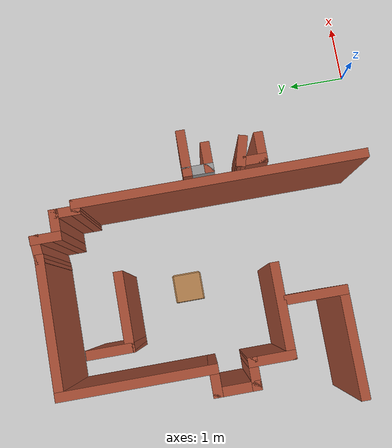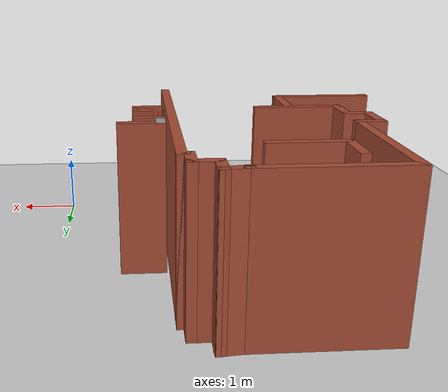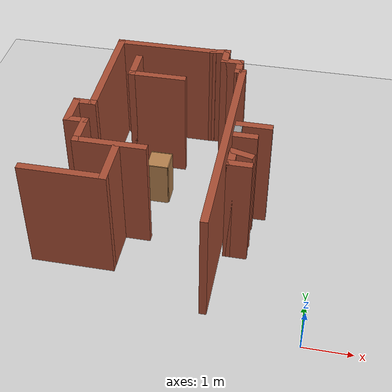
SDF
<sdf version="1.6">
 <world name="default">
  <model name="ground_plane">
   <static>1</static>
   <link name="link">
    <collision name="collision">
     <geometry><plane><normal>0 0 1</normal><size>100 100</size></plane></geometry>
     <surface><friction><ode><mu>100</mu><mu2>50</mu2></ode></friction></surface>
    </collision>
    <visual name="visual">
     <cast_shadows>0</cast_shadows>
     <geometry><plane><normal>0 0 1</normal><size>100 100</size></plane></geometry>
     <material>
      <script><uri>file://media/materials/scripts/gazebo.material</uri><name>Gazebo/Grey</name></script>
     </material>
    </visual>
   </link>
  </model>
  <model name="map_45">
   <link name="Wall_0">
    <pose>-3.30096 5.5702 0 0 -0 3.14159</pose>
    <visual name="Wall_0_Visual">
     <pose>0 0 1.25 0 -0 0</pose>
     <geometry><box><size>2.25 0.15 2.5</size></box></geometry>
     <material>
      <script><uri>file://media/materials/scripts/gazebo.material</uri><name>Gazebo/Bricks</name></script>
      <ambient>1 1 1 1</ambient>
      <shader type="pixel"/>
     </material>
     <meta><layer>0</layer></meta>
    </visual>
    <collision name="Wall_0_Collision">
     <pose>0 0 1.25 0 -0 0</pose>
     <geometry><box><size>2.25 0.15 2.5</size></box></geometry>
     <surface>
      <friction>
       <ode><mu>1</mu><mu2>1</mu2><fdir1>0 0 0</fdir1><slip1>0</slip1><slip2>0</slip2></ode>
       <torsional>
        <coefficient>1</coefficient>
        <patch_radius>0</patch_radius>
        <surface_radius>0</surface_radius>
        <use_patch_radius>1</use_patch_radius>
        <ode><slip>0</slip></ode>
       </torsional>
      </friction>
      <bounce><restitution_coefficient>0</restitution_coefficient><threshold>1e+06</threshold></bounce>
      <contact>
       <collide_without_contact>0</collide_without_contact>
       <collide_without_contact_bitmask>1</collide_without_contact_bitmask>
       <collide_bitmask>1</collide_bitmask>
       <ode>
        <soft_cfm>0</soft_cfm>
        <soft_erp>0.2</soft_erp>
        <kp>1e+13</kp>
        <kd>1</kd>
        <max_vel>0.01</max_vel>
        <min_depth>0</min_depth>
       </ode>
       <bullet>
        <split_impulse>1</split_impulse>
        <split_impulse_penetration_threshold>-0.01</split_impulse_penetration_threshold>
        <soft_cfm>0</soft_cfm>
        <soft_erp>0.2</soft_erp>
        <kp>1e+13</kp>
        <kd>1</kd>
       </bullet>
      </contact>
     </surface>
    </collision>
   </link>
   <link name="Wall_1">
    <pose>-4.35096 4.3952 0 0 0 -1.5708</pose>
    <visual name="Wall_1_Visual">
     <pose>0 0 1.25 0 -0 0</pose>
     <geometry><box><size>2.5 0.15 2.5</size></box></geometry>
     <material>
      <script><uri>file://media/materials/scripts/gazebo.material</uri><name>Gazebo/Bricks</name></script>
      <ambient>1 1 1 1</ambient>
      <shader type="pixel"/>
     </material>
     <meta><layer>0</layer></meta>
    </visual>
    <collision name="Wall_1_Collision">
     <pose>0 0 1.25 0 -0 0</pose>
     <geometry><box><size>2.5 0.15 2.5</size></box></geometry>
     <surface>
      <friction>
       <ode><mu>1</mu><mu2>1</mu2><fdir1>0 0 0</fdir1><slip1>0</slip1><slip2>0</slip2></ode>
       <torsional>
        <coefficient>1</coefficient>
        <patch_radius>0</patch_radius>
        <surface_radius>0</surface_radius>
        <use_patch_radius>1</use_patch_radius>
        <ode><slip>0</slip></ode>
       </torsional>
      </friction>
      <bounce><restitution_coefficient>0</restitution_coefficient><threshold>1e+06</threshold></bounce>
      <contact>
       <collide_without_contact>0</collide_without_contact>
       <collide_without_contact_bitmask>1</collide_without_contact_bitmask>
       <collide_bitmask>1</collide_bitmask>
       <ode>
        <soft_cfm>0</soft_cfm>
        <soft_erp>0.2</soft_erp>
        <kp>1e+13</kp>
        <kd>1</kd>
        <max_vel>0.01</max_vel>
        <min_depth>0</min_depth>
       </ode>
       <bullet>
        <split_impulse>1</split_impulse>
        <split_impulse_penetration_threshold>-0.01</split_impulse_penetration_threshold>
        <soft_cfm>0</soft_cfm>
        <soft_erp>0.2</soft_erp>
        <kp>1e+13</kp>
        <kd>1</kd>
       </bullet>
      </contact>
     </surface>
    </collision>
   </link>
   <link name="Wall_101">
    <pose>-1.00264 3.09305 0 0 -0 3.14159</pose>
    <visual name="Wall_101_Visual">
     <pose>0 0 1.25 0 -0 0</pose>
     <geometry><box><size>0.75 0.15 2.5</size></box></geometry>
     <material>
      <script><uri>file://media/materials/scripts/gazebo.material</uri><name>Gazebo/Bricks</name></script>
      <ambient>1 1 1 1</ambient>
      <shader type="pixel"/>
     </material>
     <meta><layer>0</layer></meta>
    </visual>
    <collision name="Wall_101_Collision">
     <pose>0 0 1.25 0 -0 0</pose>
     <geometry><box><size>0.75 0.15 2.5</size></box></geometry>
     <surface>
      <friction>
       <ode><mu>1</mu><mu2>1</mu2><fdir1>0 0 0</fdir1><slip1>0</slip1><slip2>0</slip2></ode>
       <torsional>
        <coefficient>1</coefficient>
        <patch_radius>0</patch_radius>
        <surface_radius>0</surface_radius>
        <use_patch_radius>1</use_patch_radius>
        <ode><slip>0</slip></ode>
       </torsional>
      </friction>
      <bounce><restitution_coefficient>0</restitution_coefficient><threshold>1e+06</threshold></bounce>
      <contact>
       <collide_without_contact>0</collide_without_contact>
       <collide_without_contact_bitmask>1</collide_without_contact_bitmask>
       <collide_bitmask>1</collide_bitmask>
       <ode>
        <soft_cfm>0</soft_cfm>
        <soft_erp>0.2</soft_erp>
        <kp>1e+13</kp>
        <kd>1</kd>
        <max_vel>0.01</max_vel>
        <min_depth>0</min_depth>
       </ode>
       <bullet>
        <split_impulse>1</split_impulse>
        <split_impulse_penetration_threshold>-0.01</split_impulse_penetration_threshold>
        <soft_cfm>0</soft_cfm>
        <soft_erp>0.2</soft_erp>
        <kp>1e+13</kp>
        <kd>1</kd>
       </bullet>
      </contact>
     </surface>
    </collision>
   </link>
   <link name="Wall_102">
    <pose>-1.30264 2.91805 0 0 0 -1.5708</pose>
    <visual name="Wall_102_Visual">
     <pose>0 0 1.25 0 -0 0</pose>
     <geometry><box><size>0.5 0.15 2.5</size></box></geometry>
     <material>
      <script><uri>file://media/materials/scripts/gazebo.material</uri><name>Gazebo/Grey</name></script>
      <ambient>1 1 1 1</ambient>
      <shader type="pixel"/>
     </material>
     <meta><layer>0</layer></meta>
    </visual>
    <collision name="Wall_102_Collision">
     <pose>0 0 1.25 0 -0 0</pose>
     <geometry><box><size>0.5 0.15 2.5</size></box></geometry>
     <surface>
      <friction>
       <ode><mu>1</mu><mu2>1</mu2><fdir1>0 0 0</fdir1><slip1>0</slip1><slip2>0</slip2></ode>
       <torsional>
        <coefficient>1</coefficient>
        <patch_radius>0</patch_radius>
        <surface_radius>0</surface_radius>
        <use_patch_radius>1</use_patch_radius>
        <ode><slip>0</slip></ode>
       </torsional>
      </friction>
      <bounce><restitution_coefficient>0</restitution_coefficient><threshold>1e+06</threshold></bounce>
      <contact>
       <collide_without_contact>0</collide_without_contact>
       <collide_without_contact_bitmask>1</collide_without_contact_bitmask>
       <collide_bitmask>1</collide_bitmask>
       <ode>
        <soft_cfm>0</soft_cfm>
        <soft_erp>0.2</soft_erp>
        <kp>1e+13</kp>
        <kd>1</kd>
        <max_vel>0.01</max_vel>
        <min_depth>0</min_depth>
       </ode>
       <bullet>
        <split_impulse>1</split_impulse>
        <split_impulse_penetration_threshold>-0.01</split_impulse_penetration_threshold>
        <soft_cfm>0</soft_cfm>
        <soft_erp>0.2</soft_erp>
        <kp>1e+13</kp>
        <kd>1</kd>
       </bullet>
      </contact>
     </surface>
    </collision>
   </link>
   <link name="Wall_103">
    <pose>-1.12764 2.74305 0 0 -0 0</pose>
    <visual name="Wall_103_Visual">
     <pose>0 0 1.25 0 -0 0</pose>
     <geometry><box><size>0.5 0.15 2.5</size></box></geometry>
     <material>
      <script><uri>file://media/materials/scripts/gazebo.material</uri><name>Gazebo/Bricks</name></script>
      <ambient>1 1 1 1</ambient>
      <shader type="pixel"/>
     </material>
     <meta><layer>0</layer></meta>
    </visual>
    <collision name="Wall_103_Collision">
     <pose>0 0 1.25 0 -0 0</pose>
     <geometry><box><size>0.5 0.15 2.5</size></box></geometry>
     <surface>
      <friction>
       <ode><mu>1</mu><mu2>1</mu2><fdir1>0 0 0</fdir1><slip1>0</slip1><slip2>0</slip2></ode>
       <torsional>
        <coefficient>1</coefficient>
        <patch_radius>0</patch_radius>
        <surface_radius>0</surface_radius>
        <use_patch_radius>1</use_patch_radius>
        <ode><slip>0</slip></ode>
       </torsional>
      </friction>
      <bounce><restitution_coefficient>0</restitution_coefficient><threshold>1e+06</threshold></bounce>
      <contact>
       <collide_without_contact>0</collide_without_contact>
       <collide_without_contact_bitmask>1</collide_without_contact_bitmask>
       <collide_bitmask>1</collide_bitmask>
       <ode>
        <soft_cfm>0</soft_cfm>
        <soft_erp>0.2</soft_erp>
        <kp>1e+13</kp>
        <kd>1</kd>
        <max_vel>0.01</max_vel>
        <min_depth>0</min_depth>
       </ode>
       <bullet>
        <split_impulse>1</split_impulse>
        <split_impulse_penetration_threshold>-0.01</split_impulse_penetration_threshold>
        <soft_cfm>0</soft_cfm>
        <soft_erp>0.2</soft_erp>
        <kp>1e+13</kp>
        <kd>1</kd>
       </bullet>
      </contact>
     </surface>
    </collision>
   </link>
   <link name="Wall_105">
    <pose>-1.12168 2.18834 0 0 -0 2.87979</pose>
    <visual name="Wall_105_Visual">
     <pose>0 0 1.25 0 -0 0</pose>
     <geometry><box><size>0.5 0.15 2.5</size></box></geometry>
     <material>
      <script><uri>file://media/materials/scripts/gazebo.material</uri><name>Gazebo/Bricks</name></script>
      <ambient>1 1 1 1</ambient>
      <shader type="pixel"/>
     </material>
     <meta><layer>0</layer></meta>
    </visual>
    <collision name="Wall_105_Collision">
     <pose>0 0 1.25 0 -0 0</pose>
     <geometry><box><size>0.5 0.15 2.5</size></box></geometry>
     <surface>
      <friction>
       <ode><mu>1</mu><mu2>1</mu2><fdir1>0 0 0</fdir1><slip1>0</slip1><slip2>0</slip2></ode>
       <torsional>
        <coefficient>1</coefficient>
        <patch_radius>0</patch_radius>
        <surface_radius>0</surface_radius>
        <use_patch_radius>1</use_patch_radius>
        <ode><slip>0</slip></ode>
       </torsional>
      </friction>
      <bounce><restitution_coefficient>0</restitution_coefficient><threshold>1e+06</threshold></bounce>
      <contact>
       <collide_without_contact>0</collide_without_contact>
       <collide_without_contact_bitmask>1</collide_without_contact_bitmask>
       <collide_bitmask>1</collide_bitmask>
       <ode>
        <soft_cfm>0</soft_cfm>
        <soft_erp>0.2</soft_erp>
        <kp>1e+13</kp>
        <kd>1</kd>
        <max_vel>0.01</max_vel>
        <min_depth>0</min_depth>
       </ode>
       <bullet>
        <split_impulse>1</split_impulse>
        <split_impulse_penetration_threshold>-0.01</split_impulse_penetration_threshold>
        <soft_cfm>0</soft_cfm>
        <soft_erp>0.2</soft_erp>
        <kp>1e+13</kp>
        <kd>1</kd>
       </bullet>
      </contact>
     </surface>
    </collision>
   </link>
   <link name="Wall_106">
    <pose>-1.29072 2.05864 0 0 0 -1.5708</pose>
    <visual name="Wall_106_Visual">
     <pose>0 0 1.25 0 -0 0</pose>
     <geometry><box><size>0.5 0.15 2.5</size></box></geometry>
     <material>
      <script><uri>file://media/materials/scripts/gazebo.material</uri><name>Gazebo/Bricks</name></script>
      <ambient>1 1 1 1</ambient>
      <shader type="pixel"/>
     </material>
     <meta><layer>0</layer></meta>
    </visual>
    <collision name="Wall_106_Collision">
     <pose>0 0 1.25 0 -0 0</pose>
     <geometry><box><size>0.5 0.15 2.5</size></box></geometry>
     <surface>
      <friction>
       <ode><mu>1</mu><mu2>1</mu2><fdir1>0 0 0</fdir1><slip1>0</slip1><slip2>0</slip2></ode>
       <torsional>
        <coefficient>1</coefficient>
        <patch_radius>0</patch_radius>
        <surface_radius>0</surface_radius>
        <use_patch_radius>1</use_patch_radius>
        <ode><slip>0</slip></ode>
       </torsional>
      </friction>
      <bounce><restitution_coefficient>0</restitution_coefficient><threshold>1e+06</threshold></bounce>
      <contact>
       <collide_without_contact>0</collide_without_contact>
       <collide_without_contact_bitmask>1</collide_without_contact_bitmask>
       <collide_bitmask>1</collide_bitmask>
       <ode>
        <soft_cfm>0</soft_cfm>
        <soft_erp>0.2</soft_erp>
        <kp>1e+13</kp>
        <kd>1</kd>
        <max_vel>0.01</max_vel>
        <min_depth>0</min_depth>
       </ode>
       <bullet>
        <split_impulse>1</split_impulse>
        <split_impulse_penetration_threshold>-0.01</split_impulse_penetration_threshold>
        <soft_cfm>0</soft_cfm>
        <soft_erp>0.2</soft_erp>
        <kp>1e+13</kp>
        <kd>1</kd>
       </bullet>
      </contact>
     </surface>
    </collision>
   </link>
   <link name="Wall_107">
    <pose>-1.11572 1.88364 0 0 -0 0</pose>
    <visual name="Wall_107_Visual">
     <pose>0 0 1.25 0 -0 0</pose>
     <geometry><box><size>0.5 0.15 2.5</size></box></geometry>
     <material>
      <script><uri>file://media/materials/scripts/gazebo.material</uri><name>Gazebo/Bricks</name></script>
      <ambient>1 1 1 1</ambient>
      <shader type="pixel"/>
     </material>
     <meta><layer>0</layer></meta>
    </visual>
    <collision name="Wall_107_Collision">
     <pose>0 0 1.25 0 -0 0</pose>
     <geometry><box><size>0.5 0.15 2.5</size></box></geometry>
     <surface>
      <friction>
       <ode><mu>1</mu><mu2>1</mu2><fdir1>0 0 0</fdir1><slip1>0</slip1><slip2>0</slip2></ode>
       <torsional>
        <coefficient>1</coefficient>
        <patch_radius>0</patch_radius>
        <surface_radius>0</surface_radius>
        <use_patch_radius>1</use_patch_radius>
        <ode><slip>0</slip></ode>
       </torsional>
      </friction>
      <bounce><restitution_coefficient>0</restitution_coefficient><threshold>1e+06</threshold></bounce>
      <contact>
       <collide_without_contact>0</collide_without_contact>
       <collide_without_contact_bitmask>1</collide_without_contact_bitmask>
       <collide_bitmask>1</collide_bitmask>
       <ode>
        <soft_cfm>0</soft_cfm>
        <soft_erp>0.2</soft_erp>
        <kp>1e+13</kp>
        <kd>1</kd>
        <max_vel>0.01</max_vel>
        <min_depth>0</min_depth>
       </ode>
       <bullet>
        <split_impulse>1</split_impulse>
        <split_impulse_penetration_threshold>-0.01</split_impulse_penetration_threshold>
        <soft_cfm>0</soft_cfm>
        <soft_erp>0.2</soft_erp>
        <kp>1e+13</kp>
        <kd>1</kd>
       </bullet>
      </contact>
     </surface>
    </collision>
   </link>
   <link name="Wall_114">
    <pose>-1.49601 2.60408 0 0 -0 1.5708</pose>
    <visual name="Wall_114_Visual">
     <pose>0 0 1.25 0 -0 0</pose>
     <geometry><box><size>4.75 0.15 2.5</size></box></geometry>
     <material>
      <script><uri>file://media/materials/scripts/gazebo.material</uri><name>Gazebo/Bricks</name></script>
      <ambient>1 1 1 1</ambient>
      <shader type="pixel"/>
     </material>
     <meta><layer>0</layer></meta>
    </visual>
    <collision name="Wall_114_Collision">
     <pose>0 0 1.25 0 -0 0</pose>
     <geometry><box><size>4.75 0.15 2.5</size></box></geometry>
     <surface>
      <friction>
       <ode><mu>1</mu><mu2>1</mu2><fdir1>0 0 0</fdir1><slip1>0</slip1><slip2>0</slip2></ode>
       <torsional>
        <coefficient>1</coefficient>
        <patch_radius>0</patch_radius>
        <surface_radius>0</surface_radius>
        <use_patch_radius>1</use_patch_radius>
        <ode><slip>0</slip></ode>
       </torsional>
      </friction>
      <bounce><restitution_coefficient>0</restitution_coefficient><threshold>1e+06</threshold></bounce>
      <contact>
       <collide_without_contact>0</collide_without_contact>
       <collide_without_contact_bitmask>1</collide_without_contact_bitmask>
       <collide_bitmask>1</collide_bitmask>
       <ode>
        <soft_cfm>0</soft_cfm>
        <soft_erp>0.2</soft_erp>
        <kp>1e+13</kp>
        <kd>1</kd>
        <max_vel>0.01</max_vel>
        <min_depth>0</min_depth>
       </ode>
       <bullet>
        <split_impulse>1</split_impulse>
        <split_impulse_penetration_threshold>-0.01</split_impulse_penetration_threshold>
        <soft_cfm>0</soft_cfm>
        <soft_erp>0.2</soft_erp>
        <kp>1e+13</kp>
        <kd>1</kd>
       </bullet>
      </contact>
     </surface>
    </collision>
   </link>
   <link name="Wall_115">
    <pose>-1.54601 4.90408 0 0 -0 3.14159</pose>
    <visual name="Wall_115_Visual">
     <pose>0 0 1.25 0 -0 0</pose>
     <geometry><box><size>0.25 0.15 2.5</size></box></geometry>
     <material>
      <script><uri>file://media/materials/scripts/gazebo.material</uri><name>Gazebo/Bricks</name></script>
      <ambient>1 1 1 1</ambient>
      <shader type="pixel"/>
     </material>
     <meta><layer>0</layer></meta>
    </visual>
    <collision name="Wall_115_Collision">
     <pose>0 0 1.25 0 -0 0</pose>
     <geometry><box><size>0.25 0.15 2.5</size></box></geometry>
     <surface>
      <friction>
       <ode><mu>1</mu><mu2>1</mu2><fdir1>0 0 0</fdir1><slip1>0</slip1><slip2>0</slip2></ode>
       <torsional>
        <coefficient>1</coefficient>
        <patch_radius>0</patch_radius>
        <surface_radius>0</surface_radius>
        <use_patch_radius>1</use_patch_radius>
        <ode><slip>0</slip></ode>
       </torsional>
      </friction>
      <bounce><restitution_coefficient>0</restitution_coefficient><threshold>1e+06</threshold></bounce>
      <contact>
       <collide_without_contact>0</collide_without_contact>
       <collide_without_contact_bitmask>1</collide_without_contact_bitmask>
       <collide_bitmask>1</collide_bitmask>
       <ode>
        <soft_cfm>0</soft_cfm>
        <soft_erp>0.2</soft_erp>
        <kp>1e+13</kp>
        <kd>1</kd>
        <max_vel>0.01</max_vel>
        <min_depth>0</min_depth>
       </ode>
       <bullet>
        <split_impulse>1</split_impulse>
        <split_impulse_penetration_threshold>-0.01</split_impulse_penetration_threshold>
        <soft_cfm>0</soft_cfm>
        <soft_erp>0.2</soft_erp>
        <kp>1e+13</kp>
        <kd>1</kd>
       </bullet>
      </contact>
     </surface>
    </collision>
   </link>
   <link name="Wall_116">
    <pose>-1.59601 5.07908 0 0 -0 1.5708</pose>
    <visual name="Wall_116_Visual">
     <pose>0 0 1.25 0 -0 0</pose>
     <geometry><box><size>0.5 0.15 2.5</size></box></geometry>
     <material>
      <script><uri>file://media/materials/scripts/gazebo.material</uri><name>Gazebo/Bricks</name></script>
      <ambient>1 1 1 1</ambient>
      <shader type="pixel"/>
     </material>
     <meta><layer>0</layer></meta>
    </visual>
    <collision name="Wall_116_Collision">
     <pose>0 0 1.25 0 -0 0</pose>
     <geometry><box><size>0.5 0.15 2.5</size></box></geometry>
     <surface>
      <friction>
       <ode><mu>1</mu><mu2>1</mu2><fdir1>0 0 0</fdir1><slip1>0</slip1><slip2>0</slip2></ode>
       <torsional>
        <coefficient>1</coefficient>
        <patch_radius>0</patch_radius>
        <surface_radius>0</surface_radius>
        <use_patch_radius>1</use_patch_radius>
        <ode><slip>0</slip></ode>
       </torsional>
      </friction>
      <bounce><restitution_coefficient>0</restitution_coefficient><threshold>1e+06</threshold></bounce>
      <contact>
       <collide_without_contact>0</collide_without_contact>
       <collide_without_contact_bitmask>1</collide_without_contact_bitmask>
       <collide_bitmask>1</collide_bitmask>
       <ode>
        <soft_cfm>0</soft_cfm>
        <soft_erp>0.2</soft_erp>
        <kp>1e+13</kp>
        <kd>1</kd>
        <max_vel>0.01</max_vel>
        <min_depth>0</min_depth>
       </ode>
       <bullet>
        <split_impulse>1</split_impulse>
        <split_impulse_penetration_threshold>-0.01</split_impulse_penetration_threshold>
        <soft_cfm>0</soft_cfm>
        <soft_erp>0.2</soft_erp>
        <kp>1e+13</kp>
        <kd>1</kd>
       </bullet>
      </contact>
     </surface>
    </collision>
   </link>
   <link name="Wall_117">
    <pose>-1.77101 5.25408 0 0 -0 3.14159</pose>
    <visual name="Wall_117_Visual">
     <pose>0 0 1.25 0 -0 0</pose>
     <geometry><box><size>0.5 0.15 2.5</size></box></geometry>
     <material>
      <script><uri>file://media/materials/scripts/gazebo.material</uri><name>Gazebo/Bricks</name></script>
      <ambient>1 1 1 1</ambient>
      <shader type="pixel"/>
     </material>
     <meta><layer>0</layer></meta>
    </visual>
    <collision name="Wall_117_Collision">
     <pose>0 0 1.25 0 -0 0</pose>
     <geometry><box><size>0.5 0.15 2.5</size></box></geometry>
     <surface>
      <friction>
       <ode><mu>1</mu><mu2>1</mu2><fdir1>0 0 0</fdir1><slip1>0</slip1><slip2>0</slip2></ode>
       <torsional>
        <coefficient>1</coefficient>
        <patch_radius>0</patch_radius>
        <surface_radius>0</surface_radius>
        <use_patch_radius>1</use_patch_radius>
        <ode><slip>0</slip></ode>
       </torsional>
      </friction>
      <bounce><restitution_coefficient>0</restitution_coefficient><threshold>1e+06</threshold></bounce>
      <contact>
       <collide_without_contact>0</collide_without_contact>
       <collide_without_contact_bitmask>1</collide_without_contact_bitmask>
       <collide_bitmask>1</collide_bitmask>
       <ode>
        <soft_cfm>0</soft_cfm>
        <soft_erp>0.2</soft_erp>
        <kp>1e+13</kp>
        <kd>1</kd>
        <max_vel>0.01</max_vel>
        <min_depth>0</min_depth>
       </ode>
       <bullet>
        <split_impulse>1</split_impulse>
        <split_impulse_penetration_threshold>-0.01</split_impulse_penetration_threshold>
        <soft_cfm>0</soft_cfm>
        <soft_erp>0.2</soft_erp>
        <kp>1e+13</kp>
        <kd>1</kd>
       </bullet>
      </contact>
     </surface>
    </collision>
   </link>
   <link name="Wall_118">
    <pose>-1.94601 5.42908 0 0 -0 1.5708</pose>
    <visual name="Wall_118_Visual">
     <pose>0 0 1.25 0 -0 0</pose>
     <geometry><box><size>0.5 0.15 2.5</size></box></geometry>
     <material>
      <script><uri>file://media/materials/scripts/gazebo.material</uri><name>Gazebo/Bricks</name></script>
      <ambient>1 1 1 1</ambient>
      <shader type="pixel"/>
     </material>
     <meta><layer>0</layer></meta>
    </visual>
    <collision name="Wall_118_Collision">
     <pose>0 0 1.25 0 -0 0</pose>
     <geometry><box><size>0.5 0.15 2.5</size></box></geometry>
     <surface>
      <friction>
       <ode><mu>1</mu><mu2>1</mu2><fdir1>0 0 0</fdir1><slip1>0</slip1><slip2>0</slip2></ode>
       <torsional>
        <coefficient>1</coefficient>
        <patch_radius>0</patch_radius>
        <surface_radius>0</surface_radius>
        <use_patch_radius>1</use_patch_radius>
        <ode><slip>0</slip></ode>
       </torsional>
      </friction>
      <bounce><restitution_coefficient>0</restitution_coefficient><threshold>1e+06</threshold></bounce>
      <contact>
       <collide_without_contact>0</collide_without_contact>
       <collide_without_contact_bitmask>1</collide_without_contact_bitmask>
       <collide_bitmask>1</collide_bitmask>
       <ode>
        <soft_cfm>0</soft_cfm>
        <soft_erp>0.2</soft_erp>
        <kp>1e+13</kp>
        <kd>1</kd>
        <max_vel>0.01</max_vel>
        <min_depth>0</min_depth>
       </ode>
       <bullet>
        <split_impulse>1</split_impulse>
        <split_impulse_penetration_threshold>-0.01</split_impulse_penetration_threshold>
        <soft_cfm>0</soft_cfm>
        <soft_erp>0.2</soft_erp>
        <kp>1e+13</kp>
        <kd>1</kd>
       </bullet>
      </contact>
     </surface>
    </collision>
   </link>
   <link name="Wall_119">
    <pose>-2.09848 5.58714 0 0 0 -3.03092</pose>
    <visual name="Wall_119_Visual">
     <pose>0 0 1.25 0 -0 0</pose>
     <geometry><box><size>0.456827 0.15 2.5</size></box></geometry>
     <material>
      <script><uri>file://media/materials/scripts/gazebo.material</uri><name>Gazebo/Bricks</name></script>
      <ambient>1 1 1 1</ambient>
      <shader type="pixel"/>
     </material>
     <meta><layer>0</layer></meta>
    </visual>
    <collision name="Wall_119_Collision">
     <pose>0 0 1.25 0 -0 0</pose>
     <geometry><box><size>0.456827 0.15 2.5</size></box></geometry>
     <surface>
      <friction>
       <ode><mu>1</mu><mu2>1</mu2><fdir1>0 0 0</fdir1><slip1>0</slip1><slip2>0</slip2></ode>
       <torsional>
        <coefficient>1</coefficient>
        <patch_radius>0</patch_radius>
        <surface_radius>0</surface_radius>
        <use_patch_radius>1</use_patch_radius>
        <ode><slip>0</slip></ode>
       </torsional>
      </friction>
      <bounce><restitution_coefficient>0</restitution_coefficient><threshold>1e+06</threshold></bounce>
      <contact>
       <collide_without_contact>0</collide_without_contact>
       <collide_without_contact_bitmask>1</collide_without_contact_bitmask>
       <collide_bitmask>1</collide_bitmask>
       <ode>
        <soft_cfm>0</soft_cfm>
        <soft_erp>0.2</soft_erp>
        <kp>1e+13</kp>
        <kd>1</kd>
        <max_vel>0.01</max_vel>
        <min_depth>0</min_depth>
       </ode>
       <bullet>
        <split_impulse>1</split_impulse>
        <split_impulse_penetration_threshold>-0.01</split_impulse_penetration_threshold>
        <soft_cfm>0</soft_cfm>
        <soft_erp>0.2</soft_erp>
        <kp>1e+13</kp>
        <kd>1</kd>
       </bullet>
      </contact>
     </surface>
    </collision>
   </link>
   <link name="Wall_121">
    <pose>-3.82037 4.71159 0 0 0 -1.5708</pose>
    <visual name="Wall_121_Visual">
     <pose>0 0 1.25 0 -0 0</pose>
     <geometry><box><size>0.75 0.15 2.5</size></box></geometry>
     <material>
      <script><uri>file://media/materials/scripts/gazebo.material</uri><name>Gazebo/Bricks</name></script>
      <ambient>1 1 1 1</ambient>
      <shader type="pixel"/>
     </material>
     <meta><layer>0</layer></meta>
    </visual>
    <collision name="Wall_121_Collision">
     <pose>0 0 1.25 0 -0 0</pose>
     <geometry><box><size>0.75 0.15 2.5</size></box></geometry>
     <surface>
      <friction>
       <ode><mu>1</mu><mu2>1</mu2><fdir1>0 0 0</fdir1><slip1>0</slip1><slip2>0</slip2></ode>
       <torsional>
        <coefficient>1</coefficient>
        <patch_radius>0</patch_radius>
        <surface_radius>0</surface_radius>
        <use_patch_radius>1</use_patch_radius>
        <ode><slip>0</slip></ode>
       </torsional>
      </friction>
      <bounce><restitution_coefficient>0</restitution_coefficient><threshold>1e+06</threshold></bounce>
      <contact>
       <collide_without_contact>0</collide_without_contact>
       <collide_without_contact_bitmask>1</collide_without_contact_bitmask>
       <collide_bitmask>1</collide_bitmask>
       <ode>
        <soft_cfm>0</soft_cfm>
        <soft_erp>0.2</soft_erp>
        <kp>1e+13</kp>
        <kd>1</kd>
        <max_vel>0.01</max_vel>
        <min_depth>0</min_depth>
       </ode>
       <bullet>
        <split_impulse>1</split_impulse>
        <split_impulse_penetration_threshold>-0.01</split_impulse_penetration_threshold>
        <soft_cfm>0</soft_cfm>
        <soft_erp>0.2</soft_erp>
        <kp>1e+13</kp>
        <kd>1</kd>
       </bullet>
      </contact>
     </surface>
    </collision>
   </link>
   <link name="Wall_122">
    <pose>-3.27037 4.41159 0 0 -0 0</pose>
    <visual name="Wall_122_Visual">
     <pose>0 0 1.25 0 -0 0</pose>
     <geometry><box><size>1.25 0.15 2.5</size></box></geometry>
     <material>
      <script><uri>file://media/materials/scripts/gazebo.material</uri><name>Gazebo/Bricks</name></script>
      <ambient>1 1 1 1</ambient>
      <shader type="pixel"/>
     </material>
     <meta><layer>0</layer></meta>
    </visual>
    <collision name="Wall_122_Collision">
     <pose>0 0 1.25 0 -0 0</pose>
     <geometry><box><size>1.25 0.15 2.5</size></box></geometry>
     <surface>
      <friction>
       <ode><mu>1</mu><mu2>1</mu2><fdir1>0 0 0</fdir1><slip1>0</slip1><slip2>0</slip2></ode>
       <torsional>
        <coefficient>1</coefficient>
        <patch_radius>0</patch_radius>
        <surface_radius>0</surface_radius>
        <use_patch_radius>1</use_patch_radius>
        <ode><slip>0</slip></ode>
       </torsional>
      </friction>
      <bounce><restitution_coefficient>0</restitution_coefficient><threshold>1e+06</threshold></bounce>
      <contact>
       <collide_without_contact>0</collide_without_contact>
       <collide_without_contact_bitmask>1</collide_without_contact_bitmask>
       <collide_bitmask>1</collide_bitmask>
       <ode>
        <soft_cfm>0</soft_cfm>
        <soft_erp>0.2</soft_erp>
        <kp>1e+13</kp>
        <kd>1</kd>
        <max_vel>0.01</max_vel>
        <min_depth>0</min_depth>
       </ode>
       <bullet>
        <split_impulse>1</split_impulse>
        <split_impulse_penetration_threshold>-0.01</split_impulse_penetration_threshold>
        <soft_cfm>0</soft_cfm>
        <soft_erp>0.2</soft_erp>
        <kp>1e+13</kp>
        <kd>1</kd>
       </bullet>
      </contact>
     </surface>
    </collision>
   </link>
   <link name="Wall_2">
    <pose>-4.52596 3.2202 0 0 -0 3.14159</pose>
    <visual name="Wall_2_Visual">
     <pose>0 0 1.25 0 -0 0</pose>
     <geometry><box><size>0.5 0.15 2.5</size></box></geometry>
     <material>
      <script><uri>file://media/materials/scripts/gazebo.material</uri><name>Gazebo/Bricks</name></script>
      <ambient>1 1 1 1</ambient>
      <shader type="pixel"/>
     </material>
     <meta><layer>0</layer></meta>
    </visual>
    <collision name="Wall_2_Collision">
     <pose>0 0 1.25 0 -0 0</pose>
     <geometry><box><size>0.5 0.15 2.5</size></box></geometry>
     <surface>
      <friction>
       <ode><mu>1</mu><mu2>1</mu2><fdir1>0 0 0</fdir1><slip1>0</slip1><slip2>0</slip2></ode>
       <torsional>
        <coefficient>1</coefficient>
        <patch_radius>0</patch_radius>
        <surface_radius>0</surface_radius>
        <use_patch_radius>1</use_patch_radius>
        <ode><slip>0</slip></ode>
       </torsional>
      </friction>
      <bounce><restitution_coefficient>0</restitution_coefficient><threshold>1e+06</threshold></bounce>
      <contact>
       <collide_without_contact>0</collide_without_contact>
       <collide_without_contact_bitmask>1</collide_without_contact_bitmask>
       <collide_bitmask>1</collide_bitmask>
       <ode>
        <soft_cfm>0</soft_cfm>
        <soft_erp>0.2</soft_erp>
        <kp>1e+13</kp>
        <kd>1</kd>
        <max_vel>0.01</max_vel>
        <min_depth>0</min_depth>
       </ode>
       <bullet>
        <split_impulse>1</split_impulse>
        <split_impulse_penetration_threshold>-0.01</split_impulse_penetration_threshold>
        <soft_cfm>0</soft_cfm>
        <soft_erp>0.2</soft_erp>
        <kp>1e+13</kp>
        <kd>1</kd>
       </bullet>
      </contact>
     </surface>
    </collision>
   </link>
   <link name="Wall_3">
    <pose>-4.70096 2.9202 0 0 0 -1.5708</pose>
    <visual name="Wall_3_Visual">
     <pose>0 0 1.25 0 -0 0</pose>
     <geometry><box><size>0.75 0.15 2.5</size></box></geometry>
     <material>
      <script><uri>file://media/materials/scripts/gazebo.material</uri><name>Gazebo/Bricks</name></script>
      <ambient>1 1 1 1</ambient>
      <shader type="pixel"/>
     </material>
     <meta><layer>0</layer></meta>
    </visual>
    <collision name="Wall_3_Collision">
     <pose>0 0 1.25 0 -0 0</pose>
     <geometry><box><size>0.75 0.15 2.5</size></box></geometry>
     <surface>
      <friction>
       <ode><mu>1</mu><mu2>1</mu2><fdir1>0 0 0</fdir1><slip1>0</slip1><slip2>0</slip2></ode>
       <torsional>
        <coefficient>1</coefficient>
        <patch_radius>0</patch_radius>
        <surface_radius>0</surface_radius>
        <use_patch_radius>1</use_patch_radius>
        <ode><slip>0</slip></ode>
       </torsional>
      </friction>
      <bounce><restitution_coefficient>0</restitution_coefficient><threshold>1e+06</threshold></bounce>
      <contact>
       <collide_without_contact>0</collide_without_contact>
       <collide_without_contact_bitmask>1</collide_without_contact_bitmask>
       <collide_bitmask>1</collide_bitmask>
       <ode>
        <soft_cfm>0</soft_cfm>
        <soft_erp>0.2</soft_erp>
        <kp>1e+13</kp>
        <kd>1</kd>
        <max_vel>0.01</max_vel>
        <min_depth>0</min_depth>
       </ode>
       <bullet>
        <split_impulse>1</split_impulse>
        <split_impulse_penetration_threshold>-0.01</split_impulse_penetration_threshold>
        <soft_cfm>0</soft_cfm>
        <soft_erp>0.2</soft_erp>
        <kp>1e+13</kp>
        <kd>1</kd>
       </bullet>
      </contact>
     </surface>
    </collision>
   </link>
   <link name="Wall_4">
    <pose>-4.52596 2.6202 0 0 -0 0</pose>
    <visual name="Wall_4_Visual">
     <pose>0 0 1.25 0 -0 0</pose>
     <geometry><box><size>0.5 0.15 2.5</size></box></geometry>
     <material>
      <script><uri>file://media/materials/scripts/gazebo.material</uri><name>Gazebo/Bricks</name></script>
      <ambient>1 1 1 1</ambient>
      <shader type="pixel"/>
     </material>
     <meta><layer>0</layer></meta>
    </visual>
    <collision name="Wall_4_Collision">
     <pose>0 0 1.25 0 -0 0</pose>
     <geometry><box><size>0.5 0.15 2.5</size></box></geometry>
     <surface>
      <friction>
       <ode><mu>1</mu><mu2>1</mu2><fdir1>0 0 0</fdir1><slip1>0</slip1><slip2>0</slip2></ode>
       <torsional>
        <coefficient>1</coefficient>
        <patch_radius>0</patch_radius>
        <surface_radius>0</surface_radius>
        <use_patch_radius>1</use_patch_radius>
        <ode><slip>0</slip></ode>
       </torsional>
      </friction>
      <bounce><restitution_coefficient>0</restitution_coefficient><threshold>1e+06</threshold></bounce>
      <contact>
       <collide_without_contact>0</collide_without_contact>
       <collide_without_contact_bitmask>1</collide_without_contact_bitmask>
       <collide_bitmask>1</collide_bitmask>
       <ode>
        <soft_cfm>0</soft_cfm>
        <soft_erp>0.2</soft_erp>
        <kp>1e+13</kp>
        <kd>1</kd>
        <max_vel>0.01</max_vel>
        <min_depth>0</min_depth>
       </ode>
       <bullet>
        <split_impulse>1</split_impulse>
        <split_impulse_penetration_threshold>-0.01</split_impulse_penetration_threshold>
        <soft_cfm>0</soft_cfm>
        <soft_erp>0.2</soft_erp>
        <kp>1e+13</kp>
        <kd>1</kd>
       </bullet>
      </contact>
     </surface>
    </collision>
   </link>
   <link name="Wall_5">
    <pose>-4.35096 2.3202 0 0 0 -1.5708</pose>
    <visual name="Wall_5_Visual">
     <pose>0 0 1.25 0 -0 0</pose>
     <geometry><box><size>0.75 0.15 2.5</size></box></geometry>
     <material>
      <script><uri>file://media/materials/scripts/gazebo.material</uri><name>Gazebo/Bricks</name></script>
      <ambient>1 1 1 1</ambient>
      <shader type="pixel"/>
     </material>
     <meta><layer>0</layer></meta>
    </visual>
    <collision name="Wall_5_Collision">
     <pose>0 0 1.25 0 -0 0</pose>
     <geometry><box><size>0.75 0.15 2.5</size></box></geometry>
     <surface>
      <friction>
       <ode><mu>1</mu><mu2>1</mu2><fdir1>0 0 0</fdir1><slip1>0</slip1><slip2>0</slip2></ode>
       <torsional>
        <coefficient>1</coefficient>
        <patch_radius>0</patch_radius>
        <surface_radius>0</surface_radius>
        <use_patch_radius>1</use_patch_radius>
        <ode><slip>0</slip></ode>
       </torsional>
      </friction>
      <bounce><restitution_coefficient>0</restitution_coefficient><threshold>1e+06</threshold></bounce>
      <contact>
       <collide_without_contact>0</collide_without_contact>
       <collide_without_contact_bitmask>1</collide_without_contact_bitmask>
       <collide_bitmask>1</collide_bitmask>
       <ode>
        <soft_cfm>0</soft_cfm>
        <soft_erp>0.2</soft_erp>
        <kp>1e+13</kp>
        <kd>1</kd>
        <max_vel>0.01</max_vel>
        <min_depth>0</min_depth>
       </ode>
       <bullet>
        <split_impulse>1</split_impulse>
        <split_impulse_penetration_threshold>-0.01</split_impulse_penetration_threshold>
        <soft_cfm>0</soft_cfm>
        <soft_erp>0.2</soft_erp>
        <kp>1e+13</kp>
        <kd>1</kd>
       </bullet>
      </contact>
     </surface>
    </collision>
   </link>
   <link name="Wall_6">
    <pose>-3.67596 2.0202 0 0 -0 0</pose>
    <visual name="Wall_6_Visual">
     <pose>0 0 1.25 0 -0 0</pose>
     <geometry><box><size>1.5 0.15 2.5</size></box></geometry>
     <material>
      <script><uri>file://media/materials/scripts/gazebo.material</uri><name>Gazebo/Bricks</name></script>
      <ambient>1 1 1 1</ambient>
      <shader type="pixel"/>
     </material>
     <meta><layer>0</layer></meta>
    </visual>
    <collision name="Wall_6_Collision">
     <pose>0 0 1.25 0 -0 0</pose>
     <geometry><box><size>1.5 0.15 2.5</size></box></geometry>
     <surface>
      <friction>
       <ode><mu>1</mu><mu2>1</mu2><fdir1>0 0 0</fdir1><slip1>0</slip1><slip2>0</slip2></ode>
       <torsional>
        <coefficient>1</coefficient>
        <patch_radius>0</patch_radius>
        <surface_radius>0</surface_radius>
        <use_patch_radius>1</use_patch_radius>
        <ode><slip>0</slip></ode>
       </torsional>
      </friction>
      <bounce><restitution_coefficient>0</restitution_coefficient><threshold>1e+06</threshold></bounce>
      <contact>
       <collide_without_contact>0</collide_without_contact>
       <collide_without_contact_bitmask>1</collide_without_contact_bitmask>
       <collide_bitmask>1</collide_bitmask>
       <ode>
        <soft_cfm>0</soft_cfm>
        <soft_erp>0.2</soft_erp>
        <kp>1e+13</kp>
        <kd>1</kd>
        <max_vel>0.01</max_vel>
        <min_depth>0</min_depth>
       </ode>
       <bullet>
        <split_impulse>1</split_impulse>
        <split_impulse_penetration_threshold>-0.01</split_impulse_penetration_threshold>
        <soft_cfm>0</soft_cfm>
        <soft_erp>0.2</soft_erp>
        <kp>1e+13</kp>
        <kd>1</kd>
       </bullet>
      </contact>
     </surface>
    </collision>
   </link>
   <link name="Wall_8">
    <pose>-3.52777 1.47437 0 0 0 -1.5708</pose>
    <visual name="Wall_8_Visual">
     <pose>0 0 1.25 0 -0 0</pose>
     <geometry><box><size>1 0.15 2.5</size></box></geometry>
     <material>
      <script><uri>file://media/materials/scripts/gazebo.material</uri><name>Gazebo/Bricks</name></script>
      <ambient>1 1 1 1</ambient>
      <shader type="pixel"/>
     </material>
     <meta><layer>0</layer></meta>
    </visual>
    <collision name="Wall_8_Collision">
     <pose>0 0 1.25 0 -0 0</pose>
     <geometry><box><size>1 0.15 2.5</size></box></geometry>
     <surface>
      <friction>
       <ode><mu>1</mu><mu2>1</mu2><fdir1>0 0 0</fdir1><slip1>0</slip1><slip2>0</slip2></ode>
       <torsional>
        <coefficient>1</coefficient>
        <patch_radius>0</patch_radius>
        <surface_radius>0</surface_radius>
        <use_patch_radius>1</use_patch_radius>
        <ode><slip>0</slip></ode>
       </torsional>
      </friction>
      <bounce><restitution_coefficient>0</restitution_coefficient><threshold>1e+06</threshold></bounce>
      <contact>
       <collide_without_contact>0</collide_without_contact>
       <collide_without_contact_bitmask>1</collide_without_contact_bitmask>
       <collide_bitmask>1</collide_bitmask>
       <ode>
        <soft_cfm>0</soft_cfm>
        <soft_erp>0.2</soft_erp>
        <kp>1e+13</kp>
        <kd>1</kd>
        <max_vel>0.01</max_vel>
        <min_depth>0</min_depth>
       </ode>
       <bullet>
        <split_impulse>1</split_impulse>
        <split_impulse_penetration_threshold>-0.01</split_impulse_penetration_threshold>
        <soft_cfm>0</soft_cfm>
        <soft_erp>0.2</soft_erp>
        <kp>1e+13</kp>
        <kd>1</kd>
       </bullet>
      </contact>
     </surface>
    </collision>
   </link>
   <link name="Wall_9">
    <pose>-4.32777 1.04937 0 0 -0 3.14159</pose>
    <visual name="Wall_9_Visual">
     <pose>0 0 1.25 0 -0 0</pose>
     <geometry><box><size>1.75 0.15 2.5</size></box></geometry>
     <material>
      <script><uri>file://media/materials/scripts/gazebo.material</uri><name>Gazebo/Bricks</name></script>
      <ambient>1 1 1 1</ambient>
      <shader type="pixel"/>
     </material>
     <meta><layer>0</layer></meta>
    </visual>
    <collision name="Wall_9_Collision">
     <pose>0 0 1.25 0 -0 0</pose>
     <geometry><box><size>1.75 0.15 2.5</size></box></geometry>
     <surface>
      <friction>
       <ode><mu>1</mu><mu2>1</mu2><fdir1>0 0 0</fdir1><slip1>0</slip1><slip2>0</slip2></ode>
       <torsional>
        <coefficient>1</coefficient>
        <patch_radius>0</patch_radius>
        <surface_radius>0</surface_radius>
        <use_patch_radius>1</use_patch_radius>
        <ode><slip>0</slip></ode>
       </torsional>
      </friction>
      <bounce><restitution_coefficient>0</restitution_coefficient><threshold>1e+06</threshold></bounce>
      <contact>
       <collide_without_contact>0</collide_without_contact>
       <collide_without_contact_bitmask>1</collide_without_contact_bitmask>
       <collide_bitmask>1</collide_bitmask>
       <ode>
        <soft_cfm>0</soft_cfm>
        <soft_erp>0.2</soft_erp>
        <kp>1e+13</kp>
        <kd>1</kd>
        <max_vel>0.01</max_vel>
        <min_depth>0</min_depth>
       </ode>
       <bullet>
        <split_impulse>1</split_impulse>
        <split_impulse_penetration_threshold>-0.01</split_impulse_penetration_threshold>
        <soft_cfm>0</soft_cfm>
        <soft_erp>0.2</soft_erp>
        <kp>1e+13</kp>
        <kd>1</kd>
       </bullet>
      </contact>
     </surface>
    </collision>
   </link>
   <static>1</static>
   <pose>-0.4298 0.19019 0 0 -0 0</pose>
  </model>
  <model name="cabinet_0">
   <static>1</static>
   <link name="cabinet_bottom_plate">
    <inertial>
     <pose>0 0 -1 0 -0 0</pose>
     <inertia><ixx>2.05</ixx><ixy>0</ixy><ixz>0</ixz><iyy>2.05</iyy><iyz>0</iyz><izz>2.05</izz></inertia>
     <mass>25</mass>
    </inertial>
    <collision name="cabinet_bottom_plate_geom">
     <pose>0 0 0.01 0 -0 0</pose>
     <geometry><box><size>0.45 0.45 0.02</size></box></geometry>
    </collision>
    <visual name="cabinet_bottom_plate_geom_visual">
     <pose>0 0 0.01 0 -0 0</pose>
     <geometry><box><size>0.45 0.45 0.02</size></box></geometry>
     <material>
      <script><uri>file://media/materials/scripts/gazebo.material</uri><name>Gazebo/Wood</name></script>
     </material>
    </visual>
    <collision name="cabinet_bottom_plate_geom_cabinet_back_plate">
     <pose>0.235 0 0.51 0 -0 0</pose>
     <geometry><box><size>0.02 0.45 1.02</size></box></geometry>
    </collision>
    <visual name="cabinet_bottom_plate_geom_cabinet_back_plate_visual">
     <pose>0.235 0 0.51 0 -0 0</pose>
     <geometry><box><size>0.02 0.45 1.02</size></box></geometry>
     <material>
      <script><uri>file://media/materials/scripts/gazebo.material</uri><name>Gazebo/Wood</name></script>
     </material>
    </visual>
    <collision name="cabinet_bottom_plate_geom_cabinet_left_plate">
     <pose>0 0.235 0.51 0 -0 0</pose>
     <geometry><box><size>0.45 0.02 1.02</size></box></geometry>
    </collision>
    <visual name="cabinet_bottom_plate_geom_cabinet_left_plate_visual">
     <pose>0 0.235 0.51 0 -0 0</pose>
     <geometry><box><size>0.45 0.02 1.02</size></box></geometry>
     <material>
      <script><uri>file://media/materials/scripts/gazebo.material</uri><name>Gazebo/Wood</name></script>
     </material>
    </visual>
    <collision name="cabinet_bottom_plate_geom_cabinet_middle_plate">
     <pose>0 0 0.51 0 -0 0</pose>
     <geometry><box><size>0.45 0.45 0.02</size></box></geometry>
    </collision>
    <visual name="cabinet_bottom_plate_geom_cabinet_middle_plate_visual">
     <pose>0 0 0.51 0 -0 0</pose>
     <geometry><box><size>0.45 0.45 0.02</size></box></geometry>
     <material>
      <script><uri>file://media/materials/scripts/gazebo.material</uri><name>Gazebo/Wood</name></script>
     </material>
    </visual>
    <collision name="cabinet_bottom_plate_geom_cabinet_right_plate">
     <pose>0 -0.235 0.51 0 -0 0</pose>
     <geometry><box><size>0.45 0.02 1.02</size></box></geometry>
    </collision>
    <visual name="cabinet_bottom_plate_geom_cabinet_right_plate_visual">
     <pose>0 -0.235 0.51 0 -0 0</pose>
     <geometry><box><size>0.45 0.02 1.02</size></box></geometry>
     <material>
      <script><uri>file://media/materials/scripts/gazebo.material</uri><name>Gazebo/Wood</name></script>
     </material>
    </visual>
    <collision name="cabinet_bottom_plate_geom_cabinet_top_plate">
     <pose>0 0 1.01 0 -0 0</pose>
     <geometry><box><size>0.45 0.45 0.02</size></box></geometry>
    </collision>
    <visual name="cabinet_bottom_plate_geom_cabinet_top_plate_visual">
     <pose>0 0 1.01 0 -0 0</pose>
     <geometry><box><size>0.45 0.45 0.02</size></box></geometry>
     <material>
      <script><uri>file://media/materials/scripts/gazebo.material</uri><name>Gazebo/Wood</name></script>
     </material>
    </visual>
   </link>
   <pose>-3.4604 3.59247 0 0 -0 0</pose>
  </model>
 </world>
</sdf>
